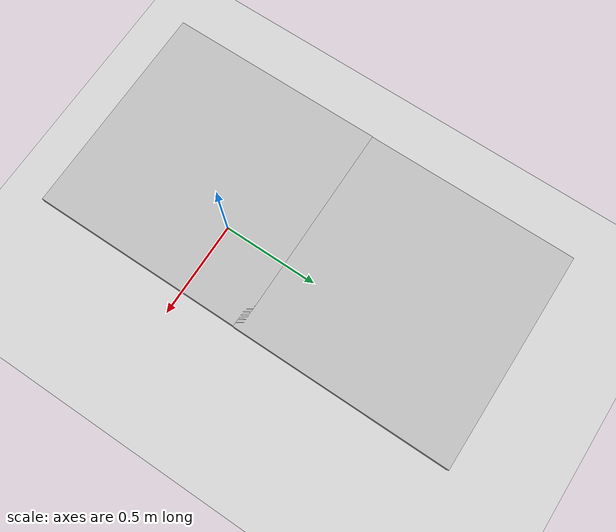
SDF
<?xml version="1.0"?>
<sdf version="1.4">
  <world name="default">
    <include>
      <uri>model://ground_plane</uri>
    </include>
    <include>
      <uri>model://sun</uri>
    </include>
    <model name='cafe_table'>
      <static>1</static>
      <link name='link'>
        <collision name='surface'>
          <pose frame=''>0 0 0.755 0 -0 0</pose>
          <geometry>
            <box>
              <size>0.913 0.913 0.04</size>
            </box>
          </geometry>
          <max_contacts>10</max_contacts>
          <surface>
            <contact>
              <ode/>
            </contact>
            <friction>
              <torsional>
                <ode/>
              </torsional>
              <ode/>
            </friction>
          </surface>
        </collision>
        <collision name='column'>
          <pose frame=''>0 0 0.37 0 -0 0</pose>
          <geometry>
            <box>
              <size>0.042 0.042 0.74</size>
            </box>
          </geometry>
          <max_contacts>10</max_contacts>
          <surface>
            <contact>
              <ode/>
            </contact>
            <friction>
              <torsional>
                <ode/>
              </torsional>
              <ode/>
            </friction>
          </surface>
        </collision>
        <collision name='base'>
          <pose frame=''>0 0 0.02 0 -0 0</pose>
          <geometry>
            <box>
              <size>0.56 0.56 0.04</size>
            </box>
          </geometry>
          <max_contacts>10</max_contacts>
          <surface>
            <contact>
              <ode/>
            </contact>
            <friction>
              <torsional>
                <ode/>
              </torsional>
              <ode/>
            </friction>
          </surface>
        </collision>
        <visual name='visual'>
          <geometry>
            <mesh>
              <uri>model://cafe_table/meshes/cafe_table.dae</uri>
            </mesh>
          </geometry>
        </visual>
        <self_collide>0</self_collide>
        <kinematic>0</kinematic>
      </link>
      <pose frame=''>-0.004521 0.002557 0 0 -0 0</pose>
    </model>
    <model name='cafe_table_clone'>
      <static>1</static>
      <link name='link'>
        <collision name='surface'>
          <pose frame=''>0 0 0.755 0 -0 0</pose>
          <geometry>
            <box>
              <size>0.913 0.913 0.04</size>
            </box>
          </geometry>
          <max_contacts>10</max_contacts>
          <surface>
            <contact>
              <ode/>
            </contact>
            <friction>
              <torsional>
                <ode/>
              </torsional>
              <ode/>
            </friction>
          </surface>
        </collision>
        <collision name='column'>
          <pose frame=''>0 0 0.37 0 -0 0</pose>
          <geometry>
            <box>
              <size>0.042 0.042 0.74</size>
            </box>
          </geometry>
          <max_contacts>10</max_contacts>
          <surface>
            <contact>
              <ode/>
            </contact>
            <friction>
              <torsional>
                <ode/>
              </torsional>
              <ode/>
            </friction>
          </surface>
        </collision>
        <collision name='base'>
          <pose frame=''>0 0 0.02 0 -0 0</pose>
          <geometry>
            <box>
              <size>0.56 0.56 0.04</size>
            </box>
          </geometry>
          <max_contacts>10</max_contacts>
          <surface>
            <contact>
              <ode/>
            </contact>
            <friction>
              <torsional>
                <ode/>
              </torsional>
              <ode/>
            </friction>
          </surface>
        </collision>
        <visual name='visual'>
          <geometry>
            <mesh>
              <uri>model://cafe_table/meshes/cafe_table.dae</uri>
            </mesh>
          </geometry>
        </visual>
        <self_collide>0</self_collide>
        <kinematic>0</kinematic>
        <material>Gazebo/Yellow</material>
        <kp>1000000.0</kp>
        <kd>1.0</kd>
        <mu1>0.8</mu1>
        <mu2>0.8</mu2>
        <maxVel>0.0</maxVel>
        <minDepth>0.001</minDepth>
      </link>
      <pose frame=''>-0.003051 0.891537 0 0 -0 0</pose>
    </model>
  </world>
</sdf>
